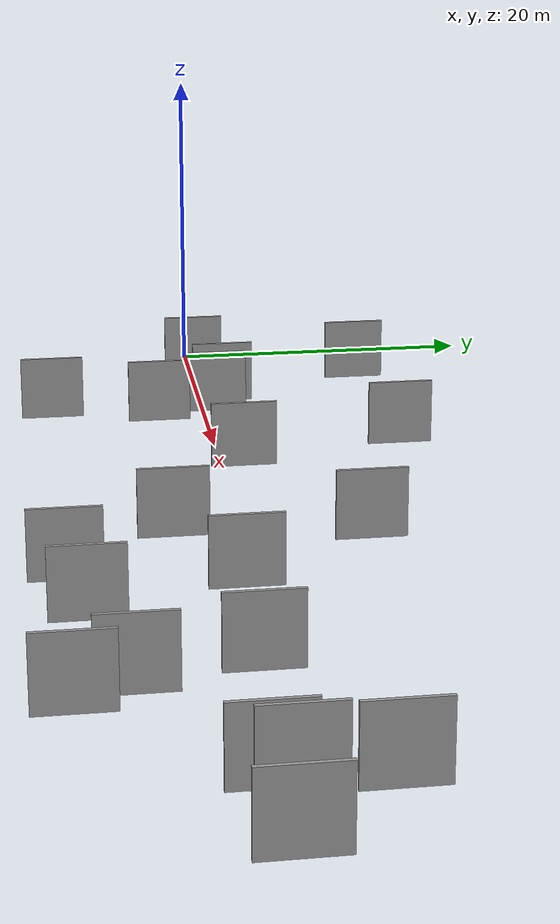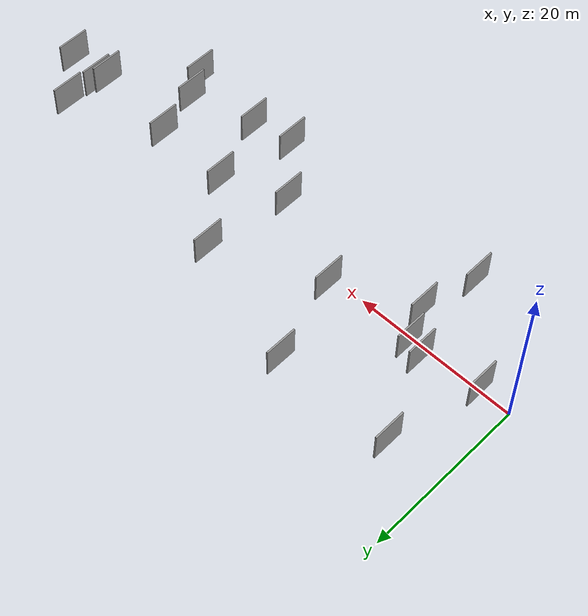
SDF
<sdf version="1.6">
 <world name="default">
  <scene>
   <sky><clouds><speed>12</speed></clouds></sky>
   <ambient>0.4 0.4 0.4 1</ambient>
   <background>0.7 0.7 0.7 1</background>
   <shadows>1</shadows>
  </scene>
  <gravity>0 0 -9.8066</gravity>
  <magnetic_field>6e-06 2.3e-05 -4.2e-05</magnetic_field>
  <physics default="0" name="default_physics" type="ode">
   <ode>
    <solver>
     <type>quick</type>
     <iters>10</iters>
     <sor>1.0</sor>
     <use_dynamic_moi_rescaling>0</use_dynamic_moi_rescaling>
    </solver>
    <constraints>
     <cfm>0</cfm>
     <erp>0.2</erp>
     <contact_max_correcting_vel>100</contact_max_correcting_vel>
     <contact_surface_layer>0.001</contact_surface_layer>
    </constraints>
   </ode>
   <max_step_size>0.004</max_step_size>
   <real_time_factor>1</real_time_factor>
   <real_time_update_rate>250</real_time_update_rate>
  </physics>
  <light name="sun" type="directional">
   <pose>0 0 10 0 0 0</pose>
   <diffuse>0.8 0.8 0.8 1</diffuse>
   <specular>0.2 0.2 0.2 1</specular>
   <attenuation>
    <range>1000</range>
    <constant>0.9</constant>
    <linear>0.01</linear>
    <quadratic>0.001</quadratic>
   </attenuation>
   <direction>-0.5 0.1 -0.9</direction>
  </light>
  <model name="grey_wall_1">
   <static>1</static>
   <pose>53.3287 -7.1377 0.0 0.000000 0.000000 1.570796</pose>
   <link name="link">
    <pose>0 0 2.00 0 0 0</pose>
    <collision name="collision"><geometry><box><size>4.00 0.2 4.00</size></box></geometry></collision>
    <visual name="visual">
     <cast_shadows>0</cast_shadows>
     <geometry><box><size>4.00 0.2 4.00</size></box></geometry>
     <material>
      <script>
       <uri>model://grey_wall/materials/scripts</uri>
       <uri>model://grey_wall/materials/textures</uri>
       <name>vrc/grey_wall</name>
      </script>
     </material>
    </visual>
   </link>
  </model>
  <model name="grey_wall_2">
   <static>1</static>
   <pose>6.4841 11.3094 0.0 0.000000 0.000000 1.570796</pose>
   <link name="link">
    <pose>0 0 2.00 0 0 0</pose>
    <collision name="collision"><geometry><box><size>4.00 0.2 4.00</size></box></geometry></collision>
    <visual name="visual">
     <cast_shadows>0</cast_shadows>
     <geometry><box><size>4.00 0.2 4.00</size></box></geometry>
     <material>
      <script>
       <uri>model://grey_wall/materials/scripts</uri>
       <uri>model://grey_wall/materials/textures</uri>
       <name>vrc/grey_wall</name>
      </script>
     </material>
    </visual>
   </link>
  </model>
  <model name="grey_wall_3">
   <static>1</static>
   <pose>3.7238 0.2727 0.0 0.000000 0.000000 1.570796</pose>
   <link name="link">
    <pose>0 0 2.00 0 0 0</pose>
    <collision name="collision"><geometry><box><size>4.00 0.2 4.00</size></box></geometry></collision>
    <visual name="visual">
     <cast_shadows>0</cast_shadows>
     <geometry><box><size>4.00 0.2 4.00</size></box></geometry>
     <material>
      <script>
       <uri>model://grey_wall/materials/scripts</uri>
       <uri>model://grey_wall/materials/textures</uri>
       <name>vrc/grey_wall</name>
      </script>
     </material>
    </visual>
   </link>
  </model>
  <model name="grey_wall_4">
   <static>1</static>
   <pose>12.7453 0.8998 0.0 0.000000 0.000000 1.570796</pose>
   <link name="link">
    <pose>0 0 2.00 0 0 0</pose>
    <collision name="collision"><geometry><box><size>4.00 0.2 4.00</size></box></geometry></collision>
    <visual name="visual">
     <cast_shadows>0</cast_shadows>
     <geometry><box><size>4.00 0.2 4.00</size></box></geometry>
     <material>
      <script>
       <uri>model://grey_wall/materials/scripts</uri>
       <uri>model://grey_wall/materials/textures</uri>
       <name>vrc/grey_wall</name>
      </script>
     </material>
    </visual>
   </link>
  </model>
  <model name="grey_wall_5">
   <static>1</static>
   <pose>62.9986 -1.1059 0.0 0.000000 0.000000 1.570796</pose>
   <link name="link">
    <pose>0 0 2.00 0 0 0</pose>
    <collision name="collision"><geometry><box><size>4.00 0.2 4.00</size></box></geometry></collision>
    <visual name="visual">
     <cast_shadows>0</cast_shadows>
     <geometry><box><size>4.00 0.2 4.00</size></box></geometry>
     <material>
      <script>
       <uri>model://grey_wall/materials/scripts</uri>
       <uri>model://grey_wall/materials/textures</uri>
       <name>vrc/grey_wall</name>
      </script>
     </material>
    </visual>
   </link>
  </model>
  <model name="grey_wall_6">
   <static>1</static>
   <pose>14.3016 -2.9795 0.0 0.000000 0.000000 1.570796</pose>
   <link name="link">
    <pose>0 0 2.00 0 0 0</pose>
    <collision name="collision"><geometry><box><size>4.00 0.2 4.00</size></box></geometry></collision>
    <visual name="visual">
     <cast_shadows>0</cast_shadows>
     <geometry><box><size>4.00 0.2 4.00</size></box></geometry>
     <material>
      <script>
       <uri>model://grey_wall/materials/scripts</uri>
       <uri>model://grey_wall/materials/textures</uri>
       <name>vrc/grey_wall</name>
      </script>
     </material>
    </visual>
   </link>
  </model>
  <model name="grey_wall_7">
   <static>1</static>
   <pose>20.9315 11.6656 0.0 0.000000 0.000000 1.570796</pose>
   <link name="link">
    <pose>0 0 2.00 0 0 0</pose>
    <collision name="collision"><geometry><box><size>4.00 0.2 4.00</size></box></geometry></collision>
    <visual name="visual">
     <cast_shadows>0</cast_shadows>
     <geometry><box><size>4.00 0.2 4.00</size></box></geometry>
     <material>
      <script>
       <uri>model://grey_wall/materials/scripts</uri>
       <uri>model://grey_wall/materials/textures</uri>
       <name>vrc/grey_wall</name>
      </script>
     </material>
    </visual>
   </link>
  </model>
  <model name="grey_wall_8">
   <static>1</static>
   <pose>63.2303 3.1358 0.0 0.000000 0.000000 1.570796</pose>
   <link name="link">
    <pose>0 0 2.00 0 0 0</pose>
    <collision name="collision"><geometry><box><size>4.00 0.2 4.00</size></box></geometry></collision>
    <visual name="visual">
     <cast_shadows>0</cast_shadows>
     <geometry><box><size>4.00 0.2 4.00</size></box></geometry>
     <material>
      <script>
       <uri>model://grey_wall/materials/scripts</uri>
       <uri>model://grey_wall/materials/textures</uri>
       <name>vrc/grey_wall</name>
      </script>
     </material>
    </visual>
   </link>
  </model>
  <model name="grey_wall_9">
   <static>1</static>
   <pose>23.7920 1.4144 0.0 0.000000 0.000000 1.570796</pose>
   <link name="link">
    <pose>0 0 2.00 0 0 0</pose>
    <collision name="collision"><geometry><box><size>4.00 0.2 4.00</size></box></geometry></collision>
    <visual name="visual">
     <cast_shadows>0</cast_shadows>
     <geometry><box><size>4.00 0.2 4.00</size></box></geometry>
     <material>
      <script>
       <uri>model://grey_wall/materials/scripts</uri>
       <uri>model://grey_wall/materials/textures</uri>
       <name>vrc/grey_wall</name>
      </script>
     </material>
    </visual>
   </link>
  </model>
  <model name="grey_wall_10">
   <static>1</static>
   <pose>54.8719 -10.0280 0.0 0.000000 0.000000 1.570796</pose>
   <link name="link">
    <pose>0 0 2.00 0 0 0</pose>
    <collision name="collision"><geometry><box><size>4.00 0.2 4.00</size></box></geometry></collision>
    <visual name="visual">
     <cast_shadows>0</cast_shadows>
     <geometry><box><size>4.00 0.2 4.00</size></box></geometry>
     <material>
      <script>
       <uri>model://grey_wall/materials/scripts</uri>
       <uri>model://grey_wall/materials/textures</uri>
       <name>vrc/grey_wall</name>
      </script>
     </material>
    </visual>
   </link>
  </model>
  <model name="grey_wall_11">
   <static>1</static>
   <pose>51.7635 -1.1362 0.0 0.000000 0.000000 1.570796</pose>
   <link name="link">
    <pose>0 0 2.00 0 0 0</pose>
    <collision name="collision"><geometry><box><size>4.00 0.2 4.00</size></box></geometry></collision>
    <visual name="visual">
     <cast_shadows>0</cast_shadows>
     <geometry><box><size>4.00 0.2 4.00</size></box></geometry>
     <material>
      <script>
       <uri>model://grey_wall/materials/scripts</uri>
       <uri>model://grey_wall/materials/textures</uri>
       <name>vrc/grey_wall</name>
      </script>
     </material>
    </visual>
   </link>
  </model>
  <model name="grey_wall_12">
   <static>1</static>
   <pose>12.7014 -9.8913 0.0 0.000000 0.000000 1.570796</pose>
   <link name="link">
    <pose>0 0 2.00 0 0 0</pose>
    <collision name="collision"><geometry><box><size>4.00 0.2 4.00</size></box></geometry></collision>
    <visual name="visual">
     <cast_shadows>0</cast_shadows>
     <geometry><box><size>4.00 0.2 4.00</size></box></geometry>
     <material>
      <script>
       <uri>model://grey_wall/materials/scripts</uri>
       <uri>model://grey_wall/materials/textures</uri>
       <name>vrc/grey_wall</name>
      </script>
     </material>
    </visual>
   </link>
  </model>
  <model name="grey_wall_13">
   <static>1</static>
   <pose>62.5439 -2.2727 0.0 0.000000 0.000000 1.570796</pose>
   <link name="link">
    <pose>0 0 2.00 0 0 0</pose>
    <collision name="collision"><geometry><box><size>4.00 0.2 4.00</size></box></geometry></collision>
    <visual name="visual">
     <cast_shadows>0</cast_shadows>
     <geometry><box><size>4.00 0.2 4.00</size></box></geometry>
     <material>
      <script>
       <uri>model://grey_wall/materials/scripts</uri>
       <uri>model://grey_wall/materials/textures</uri>
       <name>vrc/grey_wall</name>
      </script>
     </material>
    </visual>
   </link>
  </model>
  <model name="grey_wall_14">
   <static>1</static>
   <pose>39.9388 -9.9255 0.0 0.000000 0.000000 1.570796</pose>
   <link name="link">
    <pose>0 0 2.00 0 0 0</pose>
    <collision name="collision"><geometry><box><size>4.00 0.2 4.00</size></box></geometry></collision>
    <visual name="visual">
     <cast_shadows>0</cast_shadows>
     <geometry><box><size>4.00 0.2 4.00</size></box></geometry>
     <material>
      <script>
       <uri>model://grey_wall/materials/scripts</uri>
       <uri>model://grey_wall/materials/textures</uri>
       <name>vrc/grey_wall</name>
      </script>
     </material>
    </visual>
   </link>
  </model>
  <model name="grey_wall_15">
   <static>1</static>
   <pose>10.6687 1.5622 0.0 0.000000 0.000000 1.570796</pose>
   <link name="link">
    <pose>0 0 2.00 0 0 0</pose>
    <collision name="collision"><geometry><box><size>4.00 0.2 4.00</size></box></geometry></collision>
    <visual name="visual">
     <cast_shadows>0</cast_shadows>
     <geometry><box><size>4.00 0.2 4.00</size></box></geometry>
     <material>
      <script>
       <uri>model://grey_wall/materials/scripts</uri>
       <uri>model://grey_wall/materials/textures</uri>
       <name>vrc/grey_wall</name>
      </script>
     </material>
    </visual>
   </link>
  </model>
  <model name="grey_wall_16">
   <static>1</static>
   <pose>67.8674 -1.8321 0.0 0.000000 0.000000 1.570796</pose>
   <link name="link">
    <pose>0 0 2.00 0 0 0</pose>
    <collision name="collision"><geometry><box><size>4.00 0.2 4.00</size></box></geometry></collision>
    <visual name="visual">
     <cast_shadows>0</cast_shadows>
     <geometry><box><size>4.00 0.2 4.00</size></box></geometry>
     <material>
      <script>
       <uri>model://grey_wall/materials/scripts</uri>
       <uri>model://grey_wall/materials/textures</uri>
       <name>vrc/grey_wall</name>
      </script>
     </material>
    </visual>
   </link>
  </model>
  <model name="grey_wall_17">
   <static>1</static>
   <pose>36.4264 6.8745 0.0 0.000000 0.000000 1.570796</pose>
   <link name="link">
    <pose>0 0 2.00 0 0 0</pose>
    <collision name="collision"><geometry><box><size>4.00 0.2 4.00</size></box></geometry></collision>
    <visual name="visual">
     <cast_shadows>0</cast_shadows>
     <geometry><box><size>4.00 0.2 4.00</size></box></geometry>
     <material>
      <script>
       <uri>model://grey_wall/materials/scripts</uri>
       <uri>model://grey_wall/materials/textures</uri>
       <name>vrc/grey_wall</name>
      </script>
     </material>
    </visual>
   </link>
  </model>
  <model name="grey_wall_18">
   <static>1</static>
   <pose>42.1293 -0.7217 0.0 0.000000 0.000000 1.570796</pose>
   <link name="link">
    <pose>0 0 2.00 0 0 0</pose>
    <collision name="collision"><geometry><box><size>4.00 0.2 4.00</size></box></geometry></collision>
    <visual name="visual">
     <cast_shadows>0</cast_shadows>
     <geometry><box><size>4.00 0.2 4.00</size></box></geometry>
     <material>
      <script>
       <uri>model://grey_wall/materials/scripts</uri>
       <uri>model://grey_wall/materials/textures</uri>
       <name>vrc/grey_wall</name>
      </script>
     </material>
    </visual>
   </link>
  </model>
  <model name="grey_wall_19">
   <static>1</static>
   <pose>34.6966 -3.8532 0.0 0.000000 0.000000 1.570796</pose>
   <link name="link">
    <pose>0 0 2.00 0 0 0</pose>
    <collision name="collision"><geometry><box><size>4.00 0.2 4.00</size></box></geometry></collision>
    <visual name="visual">
     <cast_shadows>0</cast_shadows>
     <geometry><box><size>4.00 0.2 4.00</size></box></geometry>
     <material>
      <script>
       <uri>model://grey_wall/materials/scripts</uri>
       <uri>model://grey_wall/materials/textures</uri>
       <name>vrc/grey_wall</name>
      </script>
     </material>
    </visual>
   </link>
  </model>
  <model name="grey_wall_20">
   <static>1</static>
   <pose>45.0634 -8.9912 0.0 0.000000 0.000000 1.570796</pose>
   <link name="link">
    <pose>0 0 2.00 0 0 0</pose>
    <collision name="collision"><geometry><box><size>4.00 0.2 4.00</size></box></geometry></collision>
    <visual name="visual">
     <cast_shadows>0</cast_shadows>
     <geometry><box><size>4.00 0.2 4.00</size></box></geometry>
     <material>
      <script>
       <uri>model://grey_wall/materials/scripts</uri>
       <uri>model://grey_wall/materials/textures</uri>
       <name>vrc/grey_wall</name>
      </script>
     </material>
    </visual>
   </link>
  </model>
 </world>
</sdf>
